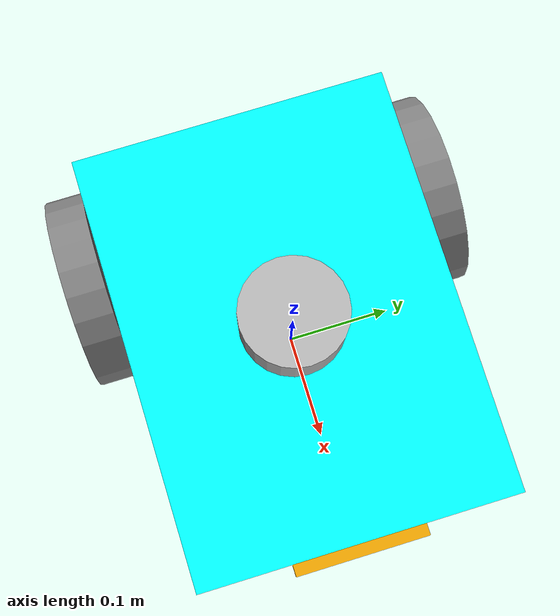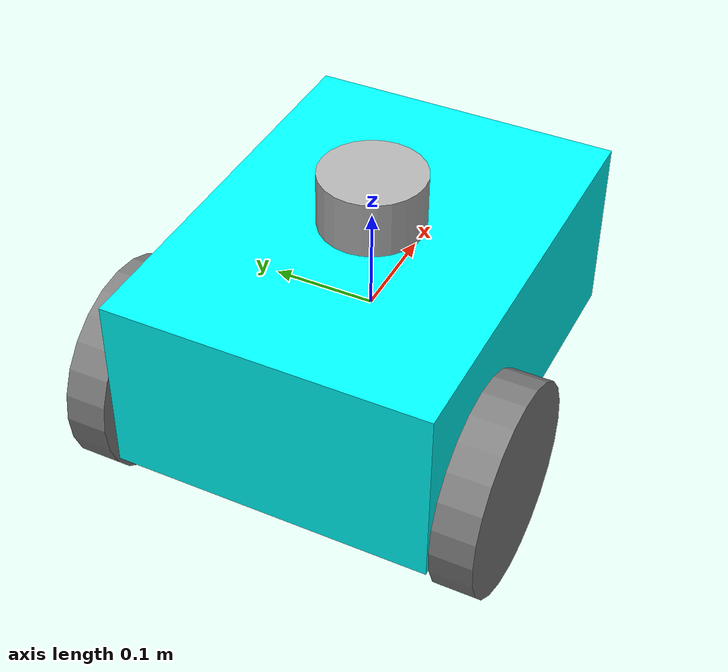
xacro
<?xml version="1.0"?>
<robot name="sam_bot" xmlns:xacro="http://ros.org/wiki/xacro">

  <!-- Define robot constants -->
  <xacro:property name="base_width" value="0.31"/>
  <xacro:property name="base_length" value="0.42"/>
  <xacro:property name="base_height" value="0.18"/>

  <xacro:property name="wheel_radius" value="0.10"/>
  <xacro:property name="wheel_width" value="0.04"/>
  <xacro:property name="wheel_ygap" value="0.025"/>
  <xacro:property name="wheel_zoff" value="0.05"/>
  <xacro:property name="wheel_xoff" value="0.12"/>

  <xacro:property name="caster_xoff" value="0.14"/>

  <!-- Define some commonly used intertial properties  -->
  <xacro:macro name="box_inertia" params="m w h d">
    <inertial>
      <origin xyz="0 0 0" rpy="${pi/2} 0 ${pi/2}"/>
      <mass value="${m}"/>
      <inertia ixx="${(m/12) * (h*h + d*d)}" ixy="0.0" ixz="0.0" iyy="${(m/12) * (w*w + d*d)}" iyz="0.0" izz="${(m/12) * (w*w + h*h)}"/>
    </inertial>
  </xacro:macro>

  <xacro:macro name="cylinder_inertia" params="m r h">
    <inertial>
      <origin xyz="0 0 0" rpy="${pi/2} 0 0" />
      <mass value="${m}"/>
      <inertia ixx="${(m/12) * (3*r*r + h*h)}" ixy = "0" ixz = "0" iyy="${(m/12) * (3*r*r + h*h)}" iyz = "0" izz="${(m/2) * (r*r)}"/>
    </inertial>
  </xacro:macro>

  <xacro:macro name="sphere_inertia" params="m r">
    <inertial>
      <mass value="${m}"/>
      <inertia ixx="${(2/5) * m * (r*r)}" ixy="0.0" ixz="0.0" iyy="${(2/5) * m * (r*r)}" iyz="0.0" izz="${(2/5) * m * (r*r)}"/>
    </inertial>
  </xacro:macro>

  <!-- Robot Base -->
  <link name="base_link">
    <visual>
      <geometry>
        <box size="${base_length} ${base_width} ${base_height}"/>
      </geometry>
      <material name="Cyan">
        <color rgba="0 1.0 1.0 1.0"/>
      </material>
    </visual>

    <collision>
      <geometry>
        <box size="${base_length} ${base_width} ${base_height}"/>
      </geometry>
    </collision>

    <xacro:box_inertia m="15" w="${base_width}" d="${base_length}" h="${base_height}"/>
  </link>

   <!-- Robot Footprint -->
  <link name="base_footprint">
  	<xacro:box_inertia m="0" w="0" d="0" h="0"/>
  </link>

  <joint name="base_joint" type="fixed">
    <parent link="base_link"/>
    <child link="base_footprint"/>
    <origin xyz="0.0 0.0 ${-(wheel_radius+wheel_zoff)}" rpy="0 0 0"/>
  </joint>

  <!-- Wheels -->
  <xacro:macro name="wheel" params="prefix x_reflect y_reflect">
    <link name="${prefix}_link">
      <visual>
        <origin xyz="0 0 0" rpy="${pi/2} 0 0"/>
        <geometry>
            <cylinder radius="${wheel_radius}" length="${wheel_width}"/>
        </geometry>
        <material name="Gray">
          <color rgba="0.5 0.5 0.5 1.0"/>
        </material>
      </visual>

      <collision>
        <origin xyz="0 0 0" rpy="${pi/2} 0 0"/>
        <geometry>
          <cylinder radius="${wheel_radius}" length="${wheel_width}"/>
        </geometry>
      </collision>

      <xacro:cylinder_inertia m="0.5" r="${wheel_radius}" h="${wheel_width}"/>
    </link>

    <joint name="${prefix}_joint" type="continuous">
      <parent link="base_link"/>
      <child link="${prefix}_link"/>
      <origin xyz="${x_reflect*wheel_xoff} ${y_reflect*(base_width/2+wheel_ygap)} ${-wheel_zoff}" rpy="0 0 0"/>
      <axis xyz="0 1 0"/>
    </joint>
  </xacro:macro>

  <xacro:wheel prefix="drivewhl_l" x_reflect="-1" y_reflect="1" />
  <xacro:wheel prefix="drivewhl_r" x_reflect="-1" y_reflect="-1" />

  <link name="front_caster">
    <visual>
      <geometry>
        <sphere radius="${(wheel_radius+wheel_zoff-(base_height/2))}"/>
      </geometry>
      <material name="Cyan">
        <color rgba="0 1.0 1.0 1.0"/>
      </material>
    </visual>

    <collision>
      <origin xyz="0 0 0" rpy="0 0 0"/>
      <geometry>
        <sphere radius="${(wheel_radius+wheel_zoff-(base_height/2))}"/>
      </geometry>
    </collision>

    <xacro:sphere_inertia m="0.5" r="${(wheel_radius+wheel_zoff-(base_height/2))}"/>
  </link>

  <joint name="caster_joint" type="fixed">
    <parent link="base_link"/>
    <child link="front_caster"/>
    <origin xyz="${caster_xoff} 0.0 ${-(base_height/2)}" rpy="0 0 0"/>
  </joint>

  <link name="imu_link">
    <visual>
      <geometry>
        <box size="0.1 0.1 0.1"/>
      </geometry>
    </visual>

    <collision>
      <geometry>
        <box size="0.1 0.1 0.1"/>
      </geometry>
    </collision>

    <xacro:box_inertia m="0.1" w="0.1" d="0.1" h="0.1"/>
  </link>

  <joint name="imu_joint" type="fixed">
    <parent link="base_link"/>
    <child link="imu_link"/>
    <origin xyz="0 0 0.01"/>
  </joint>

  <gazebo reference="imu_link">
    <gravity>true</gravity>
    <sensor name="imu_sensor" type="imu">
      <always_on>true</always_on>
      <update_rate>100</update_rate>
      <visualize>true</visualize>
      <topic>data</topic>
      <plugin filename="libgazebo_ros_imu_sensor.so" name="imu_plugin">
        <topicName>imu/data</topicName>
        <bodyName>imu_link</bodyName>
        <updateRateHZ>10.0</updateRateHZ>
        <gaussianNoise>0.0</gaussianNoise>
        <xyzOffset>0 0 0</xyzOffset>
        <rpyOffset>0 0 0</rpyOffset>
        <frameName>imu_link</frameName>
      </plugin>
      <pose>0 0 0 0 0 0</pose>
    </sensor>
  </gazebo>

  <link name="gps_link">
    <visual>
      <geometry>
        <box size="0.1 0.1 0.1"/>
      </geometry>
    </visual>

    <collision>
      <geometry>
        <box size="0.1 0.1 0.1"/>
      </geometry>
    </collision>

    <xacro:box_inertia m="0.1" w="0.1" d="0.1" h="0.1"/>
  </link>

  <joint name="gps_joint" type="fixed">
    <parent link="base_link"/>
    <child link="gps_link"/>
    <origin xyz="0 0 0.01"/>
  </joint>

  <gazebo>
    <plugin name="gps" filename="libhector_gazebo_ros_gps.so">
        <updateRate>10.0</updateRate>
        <topicName>gps/fix</topicName>
        <gaussianNoise>0.0 0.0 0.0</gaussianNoise>
        <offset>0 0 0</offset>
        <velocityGaussianNoise>0 0 0</velocityGaussianNoise>
        <frameId>gps_link</frameId>
    </plugin>
  </gazebo>

 <link name="lidar_link">
    <inertial>
      <origin xyz="0 0 0" rpy="0 0 0"/>
      <mass value="0.125"/>
      <inertia ixx="0.001"  ixy="0"  ixz="0" iyy="0.001" iyz="0" izz="0.001" />
    </inertial>

    <collision>
      <origin xyz="0 0 0" rpy="0 0 0"/>
      <geometry>
         <cylinder radius="0.0508" length="0.055"/>
      </geometry>
    </collision>

    <visual>
      <origin xyz="0 0 0" rpy="0 0 0"/>
      <geometry>
         <cylinder radius="0.0508" length="0.055"/>
      </geometry>
    </visual>
  </link>

  <joint name="lidar_joint" type="fixed">
    <parent link="base_link"/>
    <child link="lidar_link"/>
    <origin xyz="0 0 0.12" rpy="0 0 0"/>
  </joint>

  <gazebo reference="lidar_link">
    <sensor name="lidar" type="ray">
      <always_on>true</always_on>
      <visualize>true</visualize>
      <update_rate>5</update_rate>
      <ray>
        <scan>
          <horizontal>
            <samples>360</samples>
            <resolution>1.000000</resolution>
            <min_angle>0.000000</min_angle>
            <max_angle>6.280000</max_angle>
          </horizontal>
        </scan>
        <range>
          <min>0.120000</min>
          <max>3.5</max>
          <resolution>0.015000</resolution>
        </range>
        <noise>
          <type>gaussian</type>
          <mean>0.0</mean>
          <stddev>0.01</stddev>
        </noise>
      </ray>
      <plugin name="scan" filename="libgazebo_ros_laser.so">
        <topicName>/scan</topicName>
        <output_type>sensor_msgs/LaserScan</output_type>
        <frame_name>lidar_link</frame_name>
      </plugin>
    </sensor>
  </gazebo>

  <link name="camera_link">
    <visual>
      <origin xyz="0 0 0" rpy="0 0 0"/>
      <geometry>
        <box size="0.015 0.130 0.022"/>
      </geometry>
    </visual>

    <collision>
      <origin xyz="0 0 0" rpy="0 0 0"/>
      <geometry>
        <box size="0.015 0.130 0.022"/>
      </geometry>
    </collision>

    <inertial>
      <origin xyz="0 0 0" rpy="0 0 0"/>
      <mass value="0.035"/>
      <inertia ixx="0.001"  ixy="0"  ixz="0" iyy="0.001" iyz="0" izz="0.001" />
    </inertial>
  </link>

  <joint name="camera_joint" type="fixed">
    <parent link="base_link"/>
    <child link="camera_link"/>
    <origin xyz="0.215 0 0.05" rpy="0 0 0"/>
  </joint>

  <link name="camera_depth_frame"/>

  <joint name="camera_depth_joint" type="fixed">
    <origin xyz="0 0 0" rpy="${-pi/2} 0 ${-pi/2}"/>
    <parent link="camera_link"/>
    <child link="camera_depth_frame"/>
  </joint>

  <gazebo reference="camera_link">
    <sensor name="depth_camera" type="depth">
      <visualize>true</visualize>
      <update_rate>30.0</update_rate>
      <camera name="camera">
        <horizontal_fov>1.047198</horizontal_fov>
        <image>
          <width>640</width>
          <height>480</height>
          <format>R8G8B8</format>
        </image>
        <clip>
          <near>0.05</near>
          <far>3</far>
        </clip>
      </camera>
      <plugin name="depth_camera_controller" filename="libgazebo_ros_camera.so">
        <baseline>0.2</baseline>
        <alwaysOn>true</alwaysOn>
        <updateRate>0.0</updateRate>
        <frame_name>camera_depth_frame</frame_name>
        <pointCloudCutoff>0.5</pointCloudCutoff>
        <pointCloudCutoffMax>3.0</pointCloudCutoffMax>
        <distortionK1>0</distortionK1>
        <distortionK2>0</distortionK2>
        <distortionK3>0</distortionK3>
        <distortionT1>0</distortionT1>
        <distortionT2>0</distortionT2>
        <CxPrime>0</CxPrime>
        <Cx>0</Cx>
        <Cy>0</Cy>
        <focalLength>0</focalLength>
        <hackBaseline>0</hackBaseline>
      </plugin>
    </sensor>
  </gazebo>
</robot>
